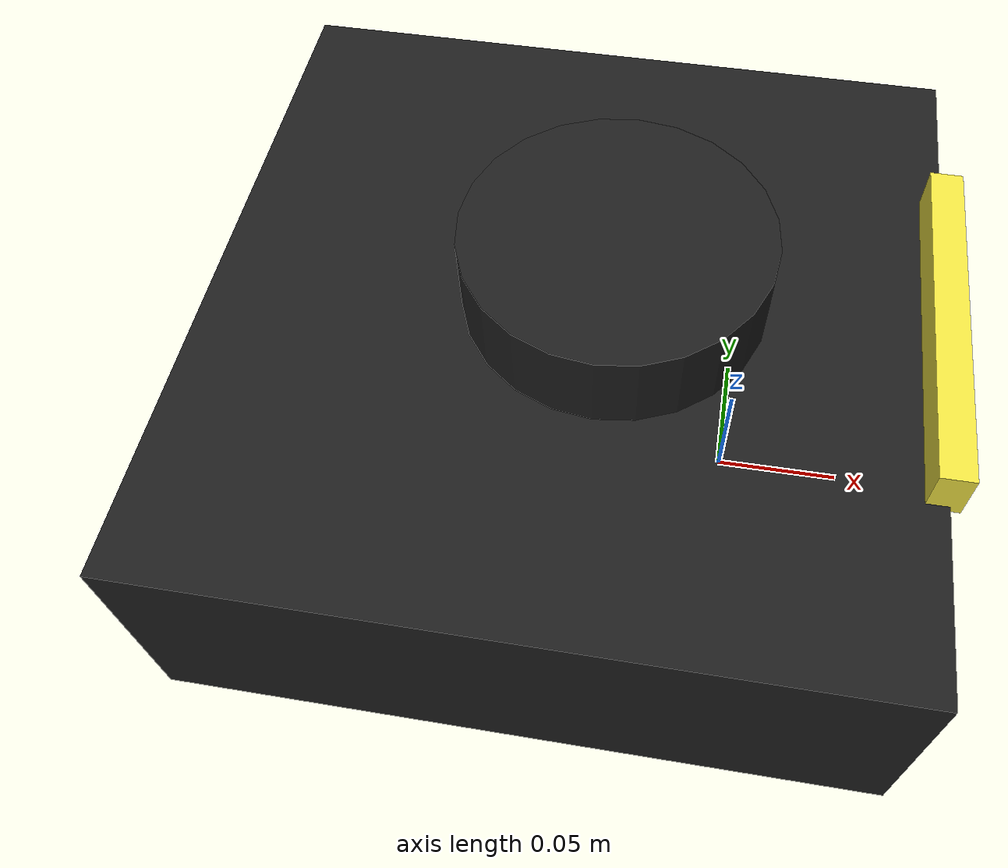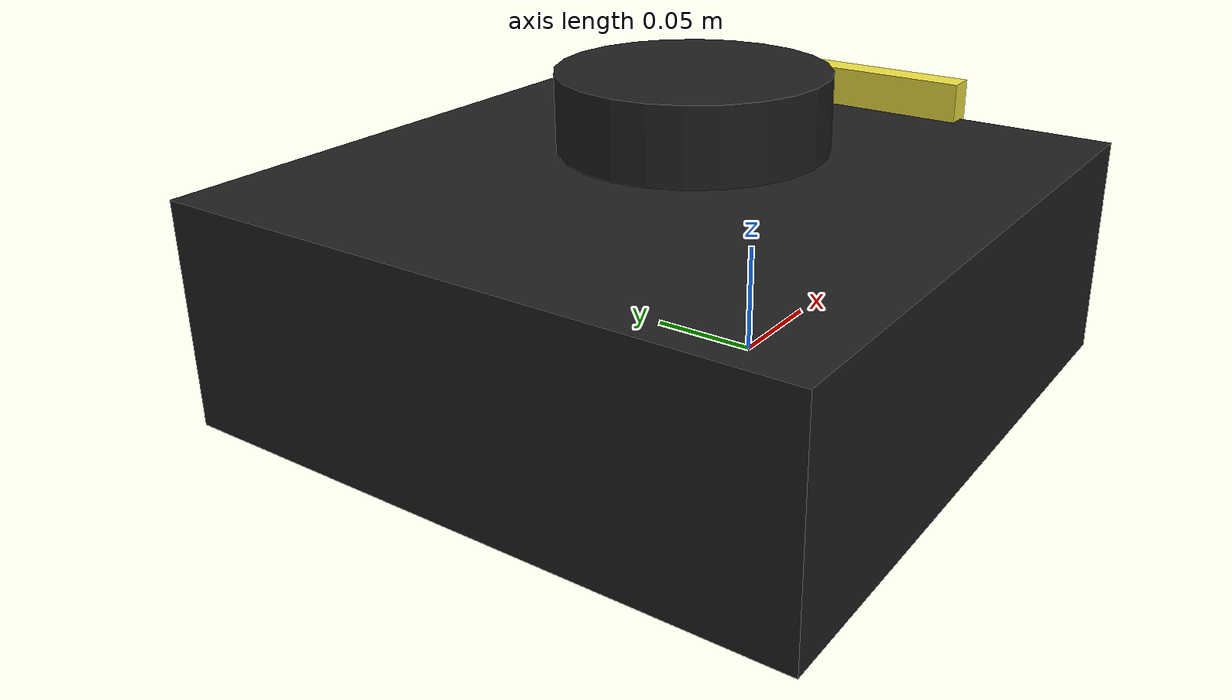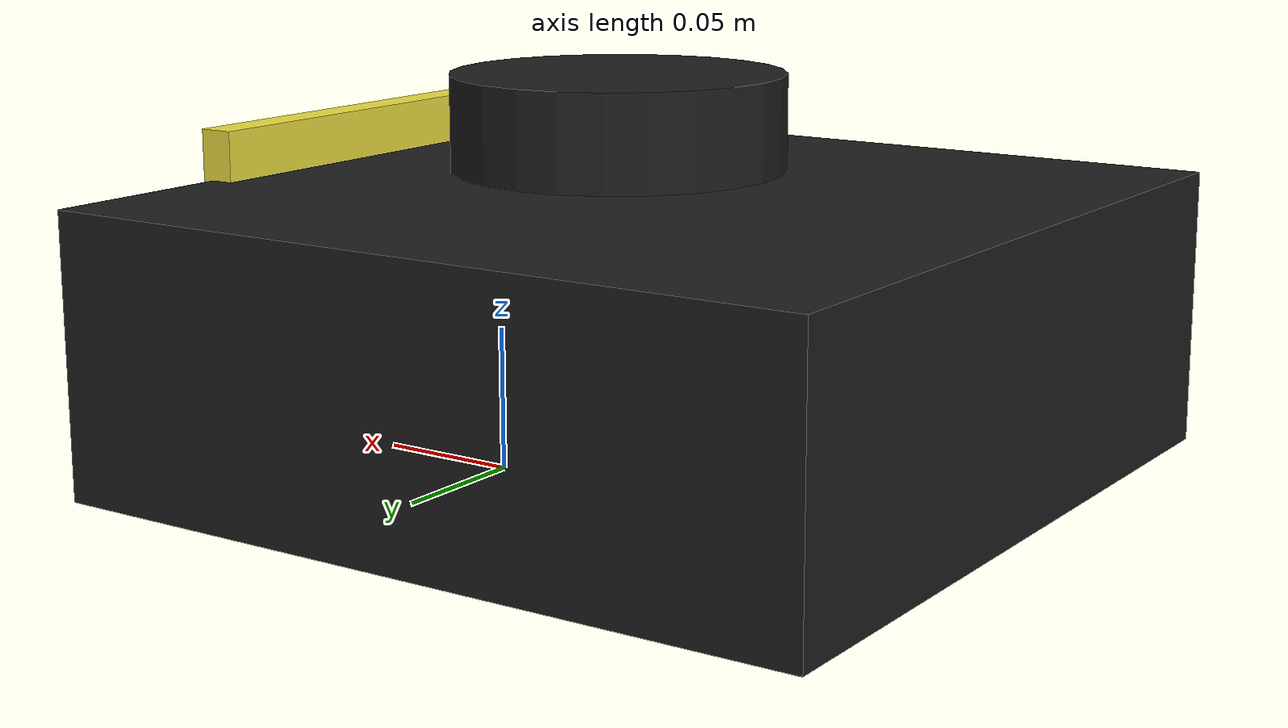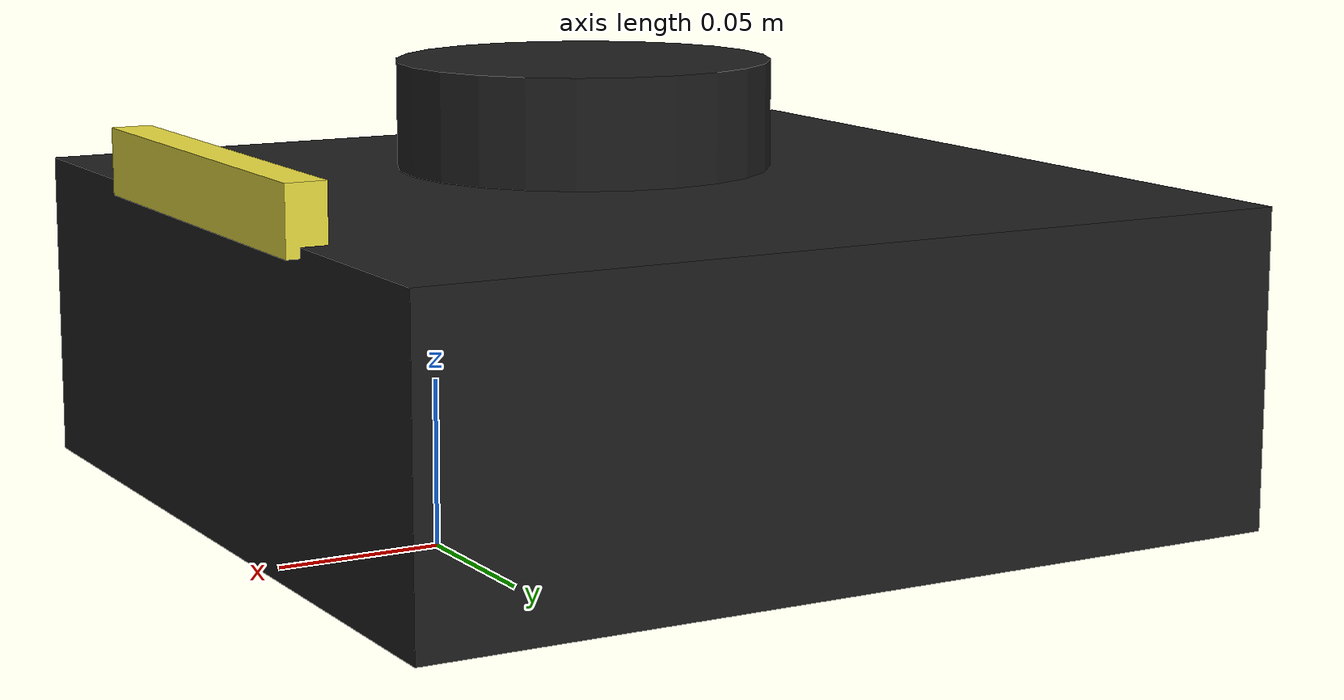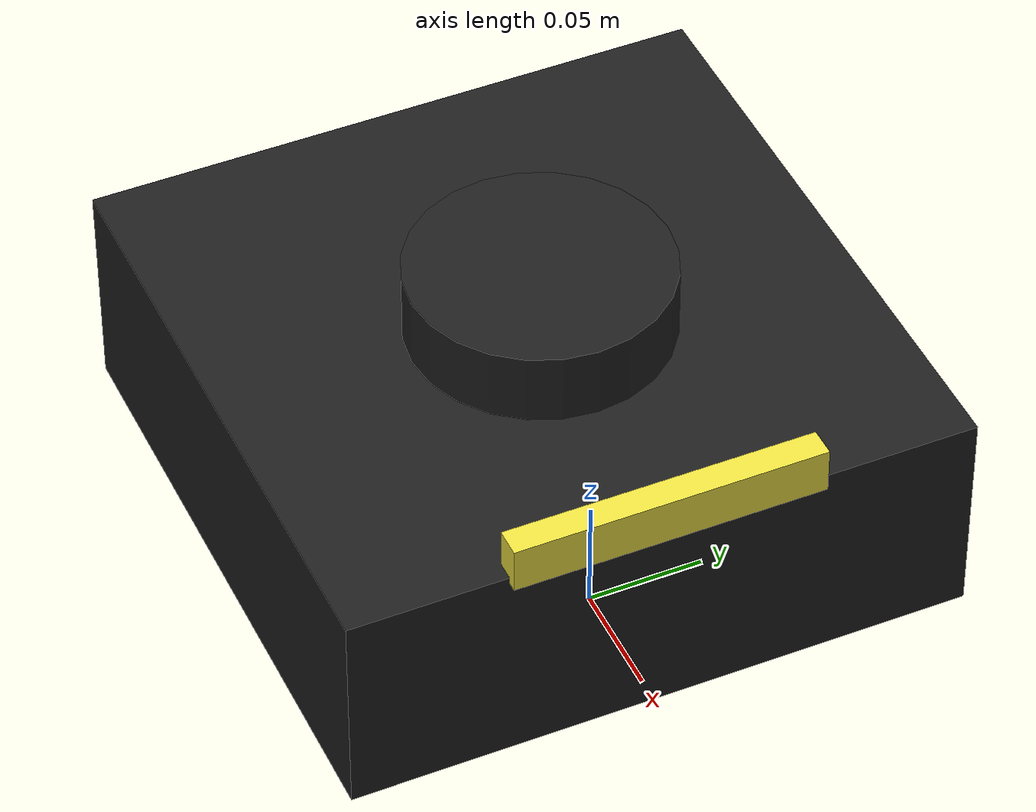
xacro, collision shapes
<?xml version="1.0" ?>
<robot name="turtlebot3_waffle" xmlns:xacro="http://ros.org/wiki/xacro">
  <xacro:include filename="$(find turtlebot3_description)/urdf/common_properties.xacro"/>
  <xacro:include filename="$(find turtlebot3_description)/urdf/turtlebot3_waffle.gazebo.xacro"/>

  <xacro:property name="r200_cam_rgb_px" value="0.005"/>
  <xacro:property name="r200_cam_rgb_py" value="0.018"/>
  <xacro:property name="r200_cam_rgb_pz" value="0.013"/>
  <xacro:property name="r200_cam_depth_offset" value="0.01"/>

  <link name="base_footprint"/>

  <joint name="base_joint" type="fixed">
    <parent link="base_footprint"/>
    <child link="base_link" />
    <origin xyz="0 0 0.010" rpy="0 0 0"/>
  </joint>

  <link name="base_link">
    <visual>
      <origin xyz="-0.064 0 0.0" rpy="0 0 0"/>
      <geometry>
        <mesh filename="package://turtlebot3_description/meshes/bases/waffle_base.stl" scale="0.001 0.001 0.001"/>
      </geometry>
      <material name="light_black"/>
    </visual>

    <collision>
      <origin xyz="-0.064 0 0.047" rpy="0 0 0"/>
      <geometry>
        <box size="0.266 0.266 0.094"/>
      </geometry>
    </collision>

    <inertial>
      <origin xyz="0 0 0" rpy="0 0 0"/>
      <mass value="1.3729096e+00"/>
      <inertia ixx="8.7002718e-03" ixy="-4.7576583e-05" ixz="1.1160499e-04"
               iyy="8.6195418e-03" iyz="-3.5422299e-06"
               izz="1.4612727e-02" />
    </inertial>
  </link>

  <joint name="scan_joint" type="fixed">
    <parent link="base_link"/>
    <child link="base_scan"/>
    <origin xyz="-0.064 0 0.122" rpy="0 0 0"/>
  </joint>

  <link name="base_scan">
    <visual>
      <origin xyz="0 0 0" rpy="0 0 0"/>
      <geometry>
        <mesh filename="package://turtlebot3_description/meshes/sensors/lds.stl" scale="0.001 0.001 0.001"/>
      </geometry>
      <material name="dark"/>
    </visual>

    <collision>
      <origin xyz="0.015 0 -0.0065" rpy="0 0 0"/>
      <geometry>
        <cylinder length="0.0315" radius="0.055"/>
      </geometry>
    </collision>

    <inertial>
      <mass value="0.114" />
      <origin xyz="0 0 0" />
      <inertia ixx="0.001" ixy="0.0" ixz="0.0"
               iyy="0.001" iyz="0.0"
               izz="0.001" />
    </inertial>
  </link>

  <joint name="camera_joint" type="fixed">
    <origin xyz="0.064 -0.065 0.094" rpy="0 0 0"/>
    <parent link="base_link"/>
    <child link="camera_link"/>
  </joint>

  <link name="camera_link">
    <visual>
     <origin xyz="0 0 0" rpy="1.57 0 1.57"/>
      <geometry>
       <mesh filename="package://turtlebot3_description/meshes/sensors/r200.dae" />
      </geometry>
    </visual>
    <collision>
      <origin xyz="0.003 0.065 0.007" rpy="0 0 0"/>
      <geometry>
        <box size="0.012 0.132 0.020"/>
      </geometry>
    </collision>

    <!-- This inertial field needs doesn't contain reliable data!! -->
  </link>

  <joint name="camera_rgb_joint" type="fixed">
    <origin xyz="${r200_cam_rgb_px} ${r200_cam_rgb_py} ${r200_cam_rgb_pz}" rpy="0 0 0"/>
    <parent link="camera_link"/>
    <child link="camera_rgb_frame"/>
  </joint>
  <link name="camera_rgb_frame"/>

  <joint name="camera_rgb_optical_joint" type="fixed">
    <origin xyz="0 0 0" rpy="-1.57 0 -1.57"/>
    <parent link="camera_rgb_frame"/>
    <child link="camera_rgb_optical_frame"/>
  </joint>
  <link name="camera_rgb_optical_frame"/>

  <joint name="camera_depth_joint" type="fixed">
    <origin xyz="${r200_cam_rgb_px} ${r200_cam_rgb_py + r200_cam_depth_offset} ${r200_cam_rgb_pz}" rpy="0 0 0"/>
    <parent link="camera_link"/>
    <child link="camera_depth_frame"/>
  </joint>
  <link name="camera_depth_frame"/>

  <joint name="camera_depth_optical_joint" type="fixed">
    <origin xyz="0 0 0" rpy="-1.57 0 -1.57"/>
    <parent link="camera_depth_frame"/>
    <child link="camera_depth_optical_frame"/>
  </joint>
  <link name="camera_depth_optical_frame"/>

</robot>
